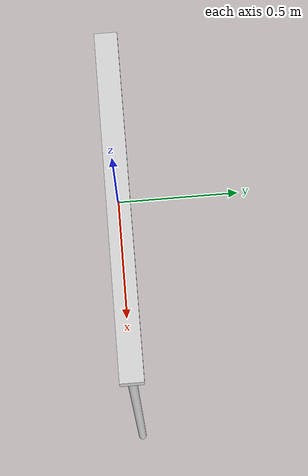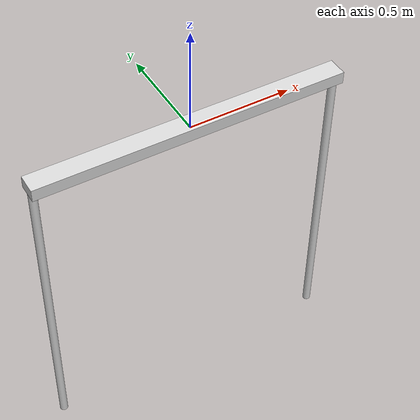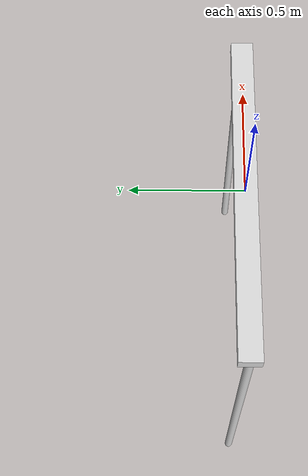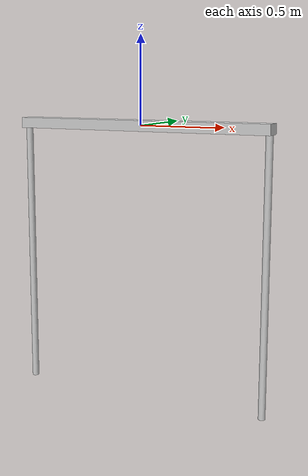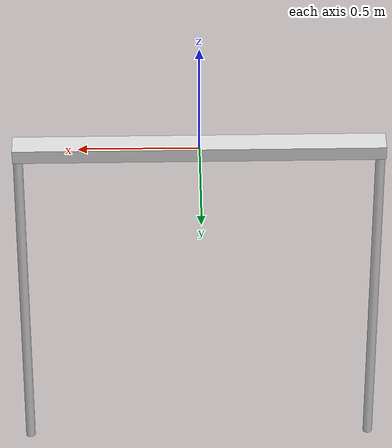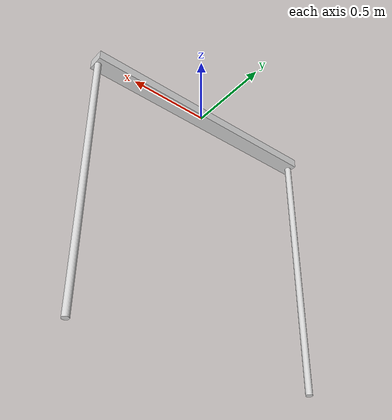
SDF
<?xml version="1.0"?>
<sdf version="1.8">
  <model name="q_gate">
    <static>true</static>

    <!-- White float bar riding on the surface. -->
    <link name="top_bar">
      <pose>0 0 0 0 1.5708 0</pose>
      <visual name="visual">
        <geometry><box><size>0.06 0.10 1.54</size></box></geometry>
        <material>
          <ambient>0.75 0.75 0.75 1</ambient>
          <diffuse>0.85 0.85 0.85 1</diffuse>
          <specular>0.2 0.2 0.2 1</specular>
        </material>
      </visual>
      <collision name="collision">
        <geometry><box><size>0.06 0.10 1.54</size></box></geometry>
      </collision>
    </link>

    <link name="left_post">
      <pose>-0.75 0 -0.8 0 0 0</pose>
      <visual name="visual">
        <geometry><cylinder><radius>0.02</radius><length>1.6</length></cylinder></geometry>
        <material>
          <ambient>0.75 0.75 0.75 1</ambient>
          <diffuse>0.85 0.85 0.85 1</diffuse>
          <specular>0.2 0.2 0.2 1</specular>
        </material>
      </visual>
      <collision name="collision">
        <geometry><cylinder><radius>0.02</radius><length>1.6</length></cylinder></geometry>
      </collision>
    </link>

    <link name="right_post">
      <pose>0.75 0 -0.8 0 0 0</pose>
      <visual name="visual">
        <geometry><cylinder><radius>0.02</radius><length>1.6</length></cylinder></geometry>
        <material>
          <ambient>0.75 0.75 0.75 1</ambient>
          <diffuse>0.85 0.85 0.85 1</diffuse>
          <specular>0.2 0.2 0.2 1</specular>
        </material>
      </visual>
      <collision name="collision">
        <geometry><cylinder><radius>0.02</radius><length>1.6</length></cylinder></geometry>
      </collision>
    </link>
  </model>
</sdf>
